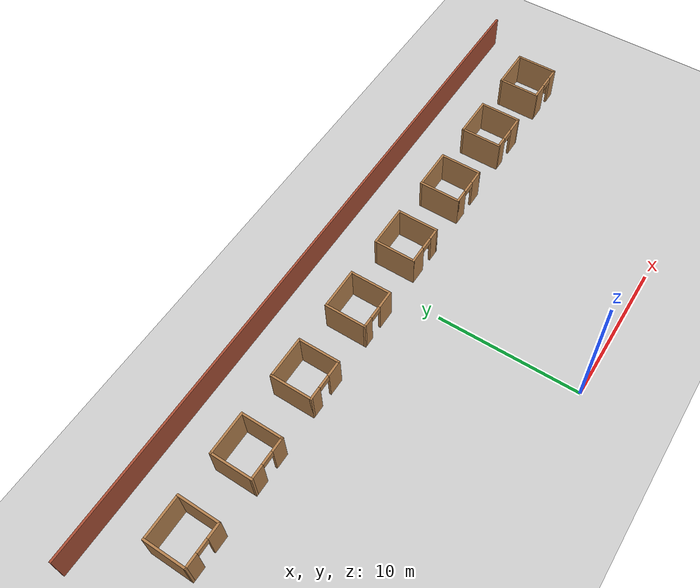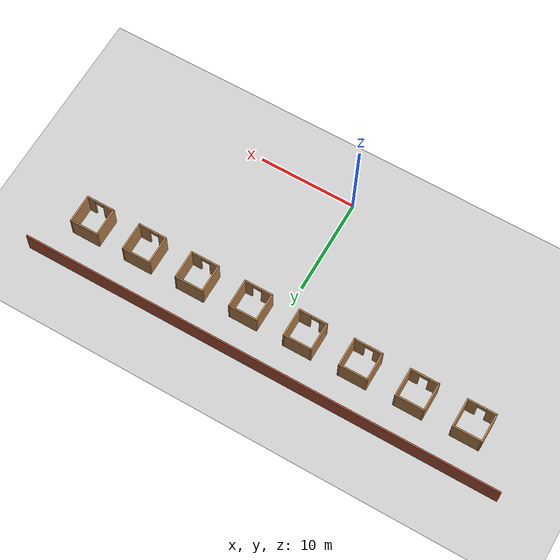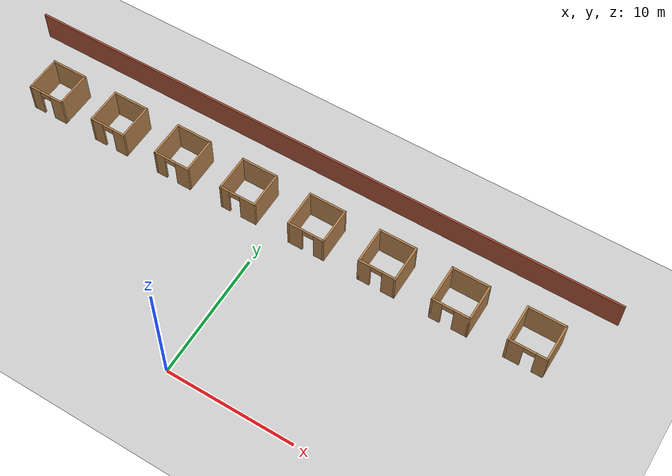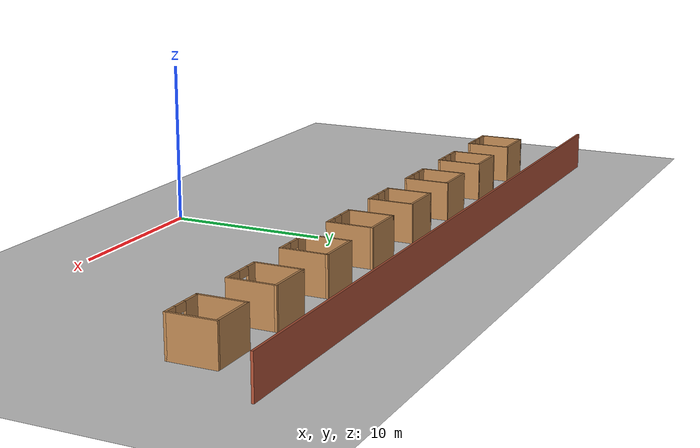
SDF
<sdf version="1.6">
 <world name="default">
  <model name="ground_plane">
   <static>1</static>
   <link name="link">
    <collision name="collision">
     <geometry><plane><normal>0 0 1</normal><size>100 100</size></plane></geometry>
     <surface>
      <contact><collide_bitmask>65535</collide_bitmask></contact>
      <friction><ode><mu>100</mu><mu2>50</mu2></ode></friction>
     </surface>
    </collision>
    <visual name="visual">
     <cast_shadows>0</cast_shadows>
     <geometry><plane><normal>0 0 1</normal><size>100 100</size></plane></geometry>
     <material>
      <script><uri>file://media/materials/scripts/gazebo.material</uri><name>Gazebo/Grey</name></script>
     </material>
    </visual>
   </link>
  </model>
  <model name="room_row_clone_clone_2">
   <pose>0.054178 14.3092 0 0 -0 3.14</pose>
   <link name="Wall_11">
    <collision name="Wall_11_Collision">
     <geometry><box><size>3 0.15 2.5</size></box></geometry>
     <pose>0 0 1.25 0 -0 0</pose>
    </collision>
    <visual name="Wall_11_Visual">
     <pose>0 0 1.25 0 -0 0</pose>
     <geometry><box><size>3 0.15 2.5</size></box></geometry>
     <material>
      <script><uri>file://media/materials/scripts/gazebo.material</uri><name>Gazebo/Wood</name></script>
      <ambient>1 1 1 1</ambient>
     </material>
     <meta><layer>0</layer></meta>
    </visual>
    <pose>1.425 0 0 0 -0 -1.5708</pose>
   </link>
   <link name="Wall_12">
    <collision name="Wall_12_Collision">
     <geometry><box><size>3 0.15 2.5</size></box></geometry>
     <pose>0 0 1.25 0 -0 0</pose>
    </collision>
    <visual name="Wall_12_Visual">
     <pose>0 0 1.25 0 -0 0</pose>
     <geometry><box><size>3 0.15 2.5</size></box></geometry>
     <material>
      <script><uri>file://media/materials/scripts/gazebo.material</uri><name>Gazebo/Wood</name></script>
      <ambient>1 1 1 1</ambient>
     </material>
     <meta><layer>0</layer></meta>
    </visual>
    <pose>2.85 -1.425 0 0 -0 0</pose>
   </link>
   <link name="Wall_13">
    <collision name="Wall_13_Collision">
     <geometry><box><size>3 0.15 2.5</size></box></geometry>
     <pose>0 0 1.25 0 -0 0</pose>
    </collision>
    <visual name="Wall_13_Visual">
     <pose>0 0 1.25 0 -0 0</pose>
     <geometry><box><size>3 0.15 2.5</size></box></geometry>
     <material>
      <script><uri>file://media/materials/scripts/gazebo.material</uri><name>Gazebo/Wood</name></script>
      <ambient>1 1 1 1</ambient>
     </material>
     <meta><layer>0</layer></meta>
    </visual>
    <pose>4.275 0 0 0 -0 1.5708</pose>
   </link>
   <link name="Wall_14">
    <pose>2.85 1.425 0 0 -0 3.14159</pose>
    <visual name="Wall_14_Visual_0">
     <pose>-1.10207 0 1.25 0 -0 0</pose>
     <geometry><box><size>0.795857 0.15 2.5</size></box></geometry>
     <material>
      <script><uri>file://media/materials/scripts/gazebo.material</uri><name>Gazebo/Wood</name></script>
      <ambient>1 1 1 1</ambient>
     </material>
     <meta><layer>0</layer></meta>
    </visual>
    <collision name="Wall_14_Collision_0">
     <geometry><box><size>0.795857 0.15 2.5</size></box></geometry>
     <pose>-1.10207 0 1.25 0 -0 0</pose>
    </collision>
    <visual name="Wall_14_Visual_1">
     <pose>0.847928 0 1.25 0 -0 0</pose>
     <geometry><box><size>1.30414 0.15 2.5</size></box></geometry>
     <material>
      <script><uri>file://media/materials/scripts/gazebo.material</uri><name>Gazebo/Wood</name></script>
      <ambient>1 1 1 1</ambient>
     </material>
     <meta><layer>0</layer></meta>
    </visual>
    <collision name="Wall_14_Collision_1">
     <geometry><box><size>1.30414 0.15 2.5</size></box></geometry>
     <pose>0.847928 0 1.25 0 -0 0</pose>
    </collision>
    <visual name="Wall_14_Visual_2">
     <pose>-0.254143 0 2.25 0 -0 0</pose>
     <geometry><box><size>0.9 0.15 0.5</size></box></geometry>
     <material>
      <script><uri>file://media/materials/scripts/gazebo.material</uri><name>Gazebo/Wood</name></script>
      <ambient>1 1 1 1</ambient>
     </material>
     <meta><layer>0</layer></meta>
    </visual>
    <collision name="Wall_14_Collision_2">
     <geometry><box><size>0.9 0.15 0.5</size></box></geometry>
     <pose>-0.254143 0 2.25 0 -0 0</pose>
    </collision>
   </link>
   <link name="Wall_17">
    <collision name="Wall_17_Collision">
     <geometry><box><size>3 0.15 2.5</size></box></geometry>
     <pose>0 0 1.25 0 -0 0</pose>
    </collision>
    <visual name="Wall_17_Visual">
     <pose>0 0 1.25 0 -0 0</pose>
     <geometry><box><size>3 0.15 2.5</size></box></geometry>
     <material>
      <script><uri>file://media/materials/scripts/gazebo.material</uri><name>Gazebo/Wood</name></script>
      <ambient>1 1 1 1</ambient>
     </material>
     <meta><layer>0</layer></meta>
    </visual>
    <pose>7.125 0 0 0 -0 -1.5708</pose>
   </link>
   <link name="Wall_18">
    <collision name="Wall_18_Collision">
     <geometry><box><size>3 0.15 2.5</size></box></geometry>
     <pose>0 0 1.25 0 -0 0</pose>
    </collision>
    <visual name="Wall_18_Visual">
     <pose>0 0 1.25 0 -0 0</pose>
     <geometry><box><size>3 0.15 2.5</size></box></geometry>
     <material>
      <script><uri>file://media/materials/scripts/gazebo.material</uri><name>Gazebo/Wood</name></script>
      <ambient>1 1 1 1</ambient>
     </material>
     <meta><layer>0</layer></meta>
    </visual>
    <pose>8.55 -1.425 0 0 -0 0</pose>
   </link>
   <link name="Wall_19">
    <collision name="Wall_19_Collision">
     <geometry><box><size>3 0.15 2.5</size></box></geometry>
     <pose>0 0 1.25 0 -0 0</pose>
    </collision>
    <visual name="Wall_19_Visual">
     <pose>0 0 1.25 0 -0 0</pose>
     <geometry><box><size>3 0.15 2.5</size></box></geometry>
     <material>
      <script><uri>file://media/materials/scripts/gazebo.material</uri><name>Gazebo/Wood</name></script>
      <ambient>1 1 1 1</ambient>
     </material>
     <meta><layer>0</layer></meta>
    </visual>
    <pose>9.975 0 0 0 -0 1.5708</pose>
   </link>
   <link name="Wall_20">
    <pose>8.55 1.425 0 0 -0 3.14159</pose>
    <visual name="Wall_20_Visual_0">
     <pose>-1.03119 0 1.25 0 -0 0</pose>
     <geometry><box><size>0.937612 0.15 2.5</size></box></geometry>
     <material>
      <script><uri>file://media/materials/scripts/gazebo.material</uri><name>Gazebo/Wood</name></script>
      <ambient>1 1 1 1</ambient>
     </material>
     <meta><layer>0</layer></meta>
    </visual>
    <collision name="Wall_20_Collision_0">
     <geometry><box><size>0.937612 0.15 2.5</size></box></geometry>
     <pose>-1.03119 0 1.25 0 -0 0</pose>
    </collision>
    <visual name="Wall_20_Visual_1">
     <pose>0.918806 0 1.25 0 -0 0</pose>
     <geometry><box><size>1.16239 0.15 2.5</size></box></geometry>
     <material>
      <script><uri>file://media/materials/scripts/gazebo.material</uri><name>Gazebo/Wood</name></script>
      <ambient>1 1 1 1</ambient>
     </material>
     <meta><layer>0</layer></meta>
    </visual>
    <collision name="Wall_20_Collision_1">
     <geometry><box><size>1.16239 0.15 2.5</size></box></geometry>
     <pose>0.918806 0 1.25 0 -0 0</pose>
    </collision>
    <visual name="Wall_20_Visual_2">
     <pose>-0.112388 0 2.25 0 -0 0</pose>
     <geometry><box><size>0.9 0.15 0.5</size></box></geometry>
     <material>
      <script><uri>file://media/materials/scripts/gazebo.material</uri><name>Gazebo/Wood</name></script>
      <ambient>1 1 1 1</ambient>
     </material>
     <meta><layer>0</layer></meta>
    </visual>
    <collision name="Wall_20_Collision_2">
     <geometry><box><size>0.9 0.15 0.5</size></box></geometry>
     <pose>-0.112388 0 2.25 0 -0 0</pose>
    </collision>
   </link>
   <link name="Wall_23">
    <collision name="Wall_23_Collision">
     <geometry><box><size>3 0.15 2.5</size></box></geometry>
     <pose>0 0 1.25 0 -0 0</pose>
    </collision>
    <visual name="Wall_23_Visual">
     <pose>0 0 1.25 0 -0 0</pose>
     <geometry><box><size>3 0.15 2.5</size></box></geometry>
     <material>
      <script><uri>file://media/materials/scripts/gazebo.material</uri><name>Gazebo/Wood</name></script>
      <ambient>1 1 1 1</ambient>
     </material>
     <meta><layer>0</layer></meta>
    </visual>
    <pose>-7.125 0 0 0 -0 -1.5708</pose>
   </link>
   <link name="Wall_24">
    <collision name="Wall_24_Collision">
     <geometry><box><size>3 0.15 2.5</size></box></geometry>
     <pose>0 0 1.25 0 -0 0</pose>
    </collision>
    <visual name="Wall_24_Visual">
     <pose>0 0 1.25 0 -0 0</pose>
     <geometry><box><size>3 0.15 2.5</size></box></geometry>
     <material>
      <script><uri>file://media/materials/scripts/gazebo.material</uri><name>Gazebo/Wood</name></script>
      <ambient>1 1 1 1</ambient>
     </material>
     <meta><layer>0</layer></meta>
    </visual>
    <pose>-8.55 -1.425 0 0 -0 3.14159</pose>
   </link>
   <link name="Wall_25">
    <collision name="Wall_25_Collision">
     <geometry><box><size>3 0.15 2.5</size></box></geometry>
     <pose>0 0 1.25 0 -0 0</pose>
    </collision>
    <visual name="Wall_25_Visual">
     <pose>0 0 1.25 0 -0 0</pose>
     <geometry><box><size>3 0.15 2.5</size></box></geometry>
     <material>
      <script><uri>file://media/materials/scripts/gazebo.material</uri><name>Gazebo/Wood</name></script>
      <ambient>1 1 1 1</ambient>
     </material>
     <meta><layer>0</layer></meta>
    </visual>
    <pose>-9.975 0 0 0 -0 1.5708</pose>
   </link>
   <link name="Wall_26">
    <pose>-8.55 1.425 0 0 -0 0</pose>
    <visual name="Wall_26_Visual_0">
     <pose>-0.952424 0 1.25 0 -0 0</pose>
     <geometry><box><size>1.09515 0.15 2.5</size></box></geometry>
     <material>
      <script><uri>file://media/materials/scripts/gazebo.material</uri><name>Gazebo/Wood</name></script>
      <ambient>1 1 1 1</ambient>
     </material>
     <meta><layer>0</layer></meta>
    </visual>
    <collision name="Wall_26_Collision_0">
     <geometry><box><size>1.09515 0.15 2.5</size></box></geometry>
     <pose>-0.952424 0 1.25 0 -0 0</pose>
    </collision>
    <visual name="Wall_26_Visual_1">
     <pose>0.997576 0 1.25 0 -0 0</pose>
     <geometry><box><size>1.00485 0.15 2.5</size></box></geometry>
     <material>
      <script><uri>file://media/materials/scripts/gazebo.material</uri><name>Gazebo/Wood</name></script>
      <ambient>1 1 1 1</ambient>
     </material>
     <meta><layer>0</layer></meta>
    </visual>
    <collision name="Wall_26_Collision_1">
     <geometry><box><size>1.00485 0.15 2.5</size></box></geometry>
     <pose>0.997576 0 1.25 0 -0 0</pose>
    </collision>
    <visual name="Wall_26_Visual_2">
     <pose>0.045152 0 2.25 0 -0 0</pose>
     <geometry><box><size>0.9 0.15 0.5</size></box></geometry>
     <material>
      <script><uri>file://media/materials/scripts/gazebo.material</uri><name>Gazebo/Wood</name></script>
      <ambient>1 1 1 1</ambient>
     </material>
     <meta><layer>0</layer></meta>
    </visual>
    <collision name="Wall_26_Collision_2">
     <geometry><box><size>0.9 0.15 0.5</size></box></geometry>
     <pose>0.045152 0 2.25 0 -0 0</pose>
    </collision>
   </link>
   <link name="Wall_29">
    <collision name="Wall_29_Collision">
     <geometry><box><size>3 0.15 2.5</size></box></geometry>
     <pose>0 0 1.25 0 -0 0</pose>
    </collision>
    <visual name="Wall_29_Visual">
     <pose>0 0 1.25 0 -0 0</pose>
     <geometry><box><size>3 0.15 2.5</size></box></geometry>
     <material>
      <script><uri>file://media/materials/scripts/gazebo.material</uri><name>Gazebo/Wood</name></script>
      <ambient>1 1 1 1</ambient>
     </material>
     <meta><layer>0</layer></meta>
    </visual>
    <pose>-12.825 0 0 0 -0 -1.5708</pose>
   </link>
   <link name="Wall_30">
    <collision name="Wall_30_Collision">
     <geometry><box><size>3 0.15 2.5</size></box></geometry>
     <pose>0 0 1.25 0 -0 0</pose>
    </collision>
    <visual name="Wall_30_Visual">
     <pose>0 0 1.25 0 -0 0</pose>
     <geometry><box><size>3 0.15 2.5</size></box></geometry>
     <material>
      <script><uri>file://media/materials/scripts/gazebo.material</uri><name>Gazebo/Wood</name></script>
      <ambient>1 1 1 1</ambient>
     </material>
     <meta><layer>0</layer></meta>
    </visual>
    <pose>-14.25 -1.425 0 0 -0 3.14159</pose>
   </link>
   <link name="Wall_31">
    <collision name="Wall_31_Collision">
     <geometry><box><size>3 0.15 2.5</size></box></geometry>
     <pose>0 0 1.25 0 -0 0</pose>
    </collision>
    <visual name="Wall_31_Visual">
     <pose>0 0 1.25 0 -0 0</pose>
     <geometry><box><size>3 0.15 2.5</size></box></geometry>
     <material>
      <script><uri>file://media/materials/scripts/gazebo.material</uri><name>Gazebo/Wood</name></script>
      <ambient>1 1 1 1</ambient>
     </material>
     <meta><layer>0</layer></meta>
    </visual>
    <pose>-15.675 0 0 0 -0 1.5708</pose>
   </link>
   <link name="Wall_32">
    <pose>-14.25 1.425 0 0 -0 0</pose>
    <visual name="Wall_32_Visual_0">
     <pose>-0.881547 0 1.25 0 -0 0</pose>
     <geometry><box><size>1.23691 0.15 2.5</size></box></geometry>
     <material>
      <script><uri>file://media/materials/scripts/gazebo.material</uri><name>Gazebo/Wood</name></script>
      <ambient>1 1 1 1</ambient>
     </material>
     <meta><layer>0</layer></meta>
    </visual>
    <collision name="Wall_32_Collision_0">
     <geometry><box><size>1.23691 0.15 2.5</size></box></geometry>
     <pose>-0.881547 0 1.25 0 -0 0</pose>
    </collision>
    <visual name="Wall_32_Visual_1">
     <pose>1.06845 0 1.25 0 -0 0</pose>
     <geometry><box><size>0.863093 0.15 2.5</size></box></geometry>
     <material>
      <script><uri>file://media/materials/scripts/gazebo.material</uri><name>Gazebo/Wood</name></script>
      <ambient>1 1 1 1</ambient>
     </material>
     <meta><layer>0</layer></meta>
    </visual>
    <collision name="Wall_32_Collision_1">
     <geometry><box><size>0.863093 0.15 2.5</size></box></geometry>
     <pose>1.06845 0 1.25 0 -0 0</pose>
    </collision>
    <visual name="Wall_32_Visual_2">
     <pose>0.186907 0 2.25 0 -0 0</pose>
     <geometry><box><size>0.9 0.15 0.5</size></box></geometry>
     <material>
      <script><uri>file://media/materials/scripts/gazebo.material</uri><name>Gazebo/Wood</name></script>
      <ambient>1 1 1 1</ambient>
     </material>
     <meta><layer>0</layer></meta>
    </visual>
    <collision name="Wall_32_Collision_2">
     <geometry><box><size>0.9 0.15 0.5</size></box></geometry>
     <pose>0.186907 0 2.25 0 -0 0</pose>
    </collision>
   </link>
   <link name="Wall_35">
    <collision name="Wall_35_Collision">
     <geometry><box><size>3 0.15 2.5</size></box></geometry>
     <pose>0 0 1.25 0 -0 0</pose>
    </collision>
    <visual name="Wall_35_Visual">
     <pose>0 0 1.25 0 -0 0</pose>
     <geometry><box><size>3 0.15 2.5</size></box></geometry>
     <material>
      <script><uri>file://media/materials/scripts/gazebo.material</uri><name>Gazebo/Wood</name></script>
      <ambient>1 1 1 1</ambient>
     </material>
     <meta><layer>0</layer></meta>
    </visual>
    <pose>12.825 0 0 0 -0 -1.5708</pose>
   </link>
   <link name="Wall_36">
    <collision name="Wall_36_Collision">
     <geometry><box><size>3 0.15 2.5</size></box></geometry>
     <pose>0 0 1.25 0 -0 0</pose>
    </collision>
    <visual name="Wall_36_Visual">
     <pose>0 0 1.25 0 -0 0</pose>
     <geometry><box><size>3 0.15 2.5</size></box></geometry>
     <material>
      <script><uri>file://media/materials/scripts/gazebo.material</uri><name>Gazebo/Wood</name></script>
      <ambient>1 1 1 1</ambient>
     </material>
     <meta><layer>0</layer></meta>
    </visual>
    <pose>14.25 -1.425 0 0 -0 0</pose>
   </link>
   <link name="Wall_37">
    <collision name="Wall_37_Collision">
     <geometry><box><size>3 0.15 2.5</size></box></geometry>
     <pose>0 0 1.25 0 -0 0</pose>
    </collision>
    <visual name="Wall_37_Visual">
     <pose>0 0 1.25 0 -0 0</pose>
     <geometry><box><size>3 0.15 2.5</size></box></geometry>
     <material>
      <script><uri>file://media/materials/scripts/gazebo.material</uri><name>Gazebo/Wood</name></script>
      <ambient>1 1 1 1</ambient>
     </material>
     <meta><layer>0</layer></meta>
    </visual>
    <pose>15.675 0 0 0 -0 1.5708</pose>
   </link>
   <link name="Wall_38">
    <pose>14.25 1.425 0 0 -0 3.14159</pose>
    <visual name="Wall_38_Visual_0">
     <pose>-0.960316 0 1.25 0 -0 0</pose>
     <geometry><box><size>1.07937 0.15 2.5</size></box></geometry>
     <material>
      <script><uri>file://media/materials/scripts/gazebo.material</uri><name>Gazebo/Wood</name></script>
      <ambient>1 1 1 1</ambient>
     </material>
     <meta><layer>0</layer></meta>
    </visual>
    <collision name="Wall_38_Collision_0">
     <geometry><box><size>1.07937 0.15 2.5</size></box></geometry>
     <pose>-0.960316 0 1.25 0 -0 0</pose>
    </collision>
    <visual name="Wall_38_Visual_1">
     <pose>0.989684 0 1.25 0 -0 0</pose>
     <geometry><box><size>1.02063 0.15 2.5</size></box></geometry>
     <material>
      <script><uri>file://media/materials/scripts/gazebo.material</uri><name>Gazebo/Wood</name></script>
      <ambient>1 1 1 1</ambient>
     </material>
     <meta><layer>0</layer></meta>
    </visual>
    <collision name="Wall_38_Collision_1">
     <geometry><box><size>1.02063 0.15 2.5</size></box></geometry>
     <pose>0.989684 0 1.25 0 -0 0</pose>
    </collision>
    <visual name="Wall_38_Visual_2">
     <pose>0.029367 0 2.25 0 -0 0</pose>
     <geometry><box><size>0.9 0.15 0.5</size></box></geometry>
     <material>
      <script><uri>file://media/materials/scripts/gazebo.material</uri><name>Gazebo/Wood</name></script>
      <ambient>1 1 1 1</ambient>
     </material>
     <meta><layer>0</layer></meta>
    </visual>
    <collision name="Wall_38_Collision_2">
     <geometry><box><size>0.9 0.15 0.5</size></box></geometry>
     <pose>0.029367 0 2.25 0 -0 0</pose>
    </collision>
   </link>
   <link name="Wall_41">
    <collision name="Wall_41_Collision">
     <geometry><box><size>3 0.15 2.5</size></box></geometry>
     <pose>0 0 1.25 0 -0 0</pose>
    </collision>
    <visual name="Wall_41_Visual">
     <pose>0 0 1.25 0 -0 0</pose>
     <geometry><box><size>3 0.15 2.5</size></box></geometry>
     <material>
      <script><uri>file://media/materials/scripts/gazebo.material</uri><name>Gazebo/Wood</name></script>
      <ambient>1 1 1 1</ambient>
     </material>
     <meta><layer>0</layer></meta>
    </visual>
    <pose>-18.525 0 0 0 -0 -1.5708</pose>
   </link>
   <link name="Wall_42">
    <collision name="Wall_42_Collision">
     <geometry><box><size>3 0.15 2.5</size></box></geometry>
     <pose>0 0 1.25 0 -0 0</pose>
    </collision>
    <visual name="Wall_42_Visual">
     <pose>0 0 1.25 0 -0 0</pose>
     <geometry><box><size>3 0.15 2.5</size></box></geometry>
     <material>
      <script><uri>file://media/materials/scripts/gazebo.material</uri><name>Gazebo/Wood</name></script>
      <ambient>1 1 1 1</ambient>
     </material>
     <meta><layer>0</layer></meta>
    </visual>
    <pose>-19.95 -1.425 0 0 -0 3.14159</pose>
   </link>
   <link name="Wall_45">
    <pose>-19.95 1.425 0 0 -0 3.14159</pose>
    <visual name="Wall_45_Visual_0">
     <pose>-0.89308 0 1.25 0 -0 0</pose>
     <geometry><box><size>1.21384 0.15 2.5</size></box></geometry>
     <material>
      <script><uri>file://media/materials/scripts/gazebo.material</uri><name>Gazebo/Wood</name></script>
      <ambient>1 1 1 1</ambient>
     </material>
     <meta><layer>0</layer></meta>
    </visual>
    <collision name="Wall_45_Collision_0">
     <geometry><box><size>1.21384 0.15 2.5</size></box></geometry>
     <pose>-0.89308 0 1.25 0 -0 0</pose>
    </collision>
    <visual name="Wall_45_Visual_1">
     <pose>1.05692 0 1.25 0 -0 0</pose>
     <geometry><box><size>0.886161 0.15 2.5</size></box></geometry>
     <material>
      <script><uri>file://media/materials/scripts/gazebo.material</uri><name>Gazebo/Wood</name></script>
      <ambient>1 1 1 1</ambient>
     </material>
     <meta><layer>0</layer></meta>
    </visual>
    <collision name="Wall_45_Collision_1">
     <geometry><box><size>0.886161 0.15 2.5</size></box></geometry>
     <pose>1.05692 0 1.25 0 -0 0</pose>
    </collision>
    <visual name="Wall_45_Visual_2">
     <pose>0.163839 0 2.25 0 -0 0</pose>
     <geometry><box><size>0.9 0.15 0.5</size></box></geometry>
     <material>
      <script><uri>file://media/materials/scripts/gazebo.material</uri><name>Gazebo/Wood</name></script>
      <ambient>1 1 1 1</ambient>
     </material>
     <meta><layer>0</layer></meta>
    </visual>
    <collision name="Wall_45_Collision_2">
     <geometry><box><size>0.9 0.15 0.5</size></box></geometry>
     <pose>0.163839 0 2.25 0 -0 0</pose>
    </collision>
   </link>
   <link name="Wall_46">
    <collision name="Wall_46_Collision">
     <geometry><box><size>3 0.15 2.5</size></box></geometry>
     <pose>0 0 1.25 0 -0 0</pose>
    </collision>
    <visual name="Wall_46_Visual">
     <pose>0 0 1.25 0 -0 0</pose>
     <geometry><box><size>3 0.15 2.5</size></box></geometry>
     <material>
      <script><uri>file://media/materials/scripts/gazebo.material</uri><name>Gazebo/Wood</name></script>
      <ambient>1 1 1 1</ambient>
     </material>
     <meta><layer>0</layer></meta>
    </visual>
    <pose>-21.375 0 0 0 -0 -1.5708</pose>
   </link>
   <link name="Wall_49">
    <collision name="Wall_49_Collision">
     <geometry><box><size>3 0.15 2.5</size></box></geometry>
     <pose>0 0 1.25 0 -0 0</pose>
    </collision>
    <visual name="Wall_49_Visual">
     <pose>0 0 1.25 0 -0 0</pose>
     <geometry><box><size>3 0.15 2.5</size></box></geometry>
     <material>
      <script><uri>file://media/materials/scripts/gazebo.material</uri><name>Gazebo/Wood</name></script>
      <ambient>1 1 1 1</ambient>
     </material>
     <meta><layer>0</layer></meta>
    </visual>
    <pose>18.525 0 0 0 -0 -1.5708</pose>
   </link>
   <link name="Wall_5">
    <pose>-2.85 1.425 0 0 -0 0</pose>
    <visual name="Wall_5_Visual_0">
     <pose>-1.05848 0 1.25 0 -0 0</pose>
     <geometry><box><size>0.883039 0.15 2.5</size></box></geometry>
     <material>
      <script><uri>file://media/materials/scripts/gazebo.material</uri><name>Gazebo/Wood</name></script>
      <ambient>1 1 1 1</ambient>
     </material>
     <meta><layer>0</layer></meta>
    </visual>
    <collision name="Wall_5_Collision_0">
     <geometry><box><size>0.883039 0.15 2.5</size></box></geometry>
     <pose>-1.05848 0 1.25 0 -0 0</pose>
    </collision>
    <visual name="Wall_5_Visual_1">
     <pose>0.891519 0 1.25 0 -0 0</pose>
     <geometry><box><size>1.21696 0.15 2.5</size></box></geometry>
     <material>
      <script><uri>file://media/materials/scripts/gazebo.material</uri><name>Gazebo/Wood</name></script>
      <ambient>1 1 1 1</ambient>
     </material>
     <meta><layer>0</layer></meta>
    </visual>
    <collision name="Wall_5_Collision_1">
     <geometry><box><size>1.21696 0.15 2.5</size></box></geometry>
     <pose>0.891519 0 1.25 0 -0 0</pose>
    </collision>
    <visual name="Wall_5_Visual_2">
     <pose>-0.166961 0 2.25 0 -0 0</pose>
     <geometry><box><size>0.9 0.15 0.5</size></box></geometry>
     <material>
      <script><uri>file://media/materials/scripts/gazebo.material</uri><name>Gazebo/Wood</name></script>
      <ambient>1 1 1 1</ambient>
     </material>
     <meta><layer>0</layer></meta>
    </visual>
    <collision name="Wall_5_Collision_2">
     <geometry><box><size>0.9 0.15 0.5</size></box></geometry>
     <pose>-0.166961 0 2.25 0 -0 0</pose>
    </collision>
   </link>
   <link name="Wall_51">
    <collision name="Wall_51_Collision">
     <geometry><box><size>3 0.15 2.5</size></box></geometry>
     <pose>0 0 1.25 0 -0 0</pose>
    </collision>
    <visual name="Wall_51_Visual">
     <pose>0 0 1.25 0 -0 0</pose>
     <geometry><box><size>3 0.15 2.5</size></box></geometry>
     <material>
      <script><uri>file://media/materials/scripts/gazebo.material</uri><name>Gazebo/Wood</name></script>
      <ambient>1 1 1 1</ambient>
     </material>
     <meta><layer>0</layer></meta>
    </visual>
    <pose>19.95 -1.425 0 0 -0 0</pose>
   </link>
   <link name="Wall_53">
    <collision name="Wall_53_Collision">
     <geometry><box><size>3 0.15 2.5</size></box></geometry>
     <pose>0 0 1.25 0 -0 0</pose>
    </collision>
    <visual name="Wall_53_Visual">
     <pose>0 0 1.25 0 -0 0</pose>
     <geometry><box><size>3 0.15 2.5</size></box></geometry>
     <material>
      <script><uri>file://media/materials/scripts/gazebo.material</uri><name>Gazebo/Wood</name></script>
      <ambient>1 1 1 1</ambient>
     </material>
     <meta><layer>0</layer></meta>
    </visual>
    <pose>21.375 0 0 0 -0 1.5708</pose>
   </link>
   <link name="Wall_54">
    <pose>19.95 1.425 0 0 -0 3.14159</pose>
    <visual name="Wall_54_Visual_0">
     <pose>-0.994975 0 1.25 0 -0 0</pose>
     <geometry><box><size>1.01005 0.15 2.5</size></box></geometry>
     <material>
      <script><uri>file://media/materials/scripts/gazebo.material</uri><name>Gazebo/Wood</name></script>
      <ambient>1 1 1 1</ambient>
     </material>
     <meta><layer>0</layer></meta>
    </visual>
    <collision name="Wall_54_Collision_0">
     <geometry><box><size>1.01005 0.15 2.5</size></box></geometry>
     <pose>-0.994975 0 1.25 0 -0 0</pose>
    </collision>
    <visual name="Wall_54_Visual_1">
     <pose>0.955025 0 1.25 0 -0 0</pose>
     <geometry><box><size>1.08995 0.15 2.5</size></box></geometry>
     <material>
      <script><uri>file://media/materials/scripts/gazebo.material</uri><name>Gazebo/Wood</name></script>
      <ambient>1 1 1 1</ambient>
     </material>
     <meta><layer>0</layer></meta>
    </visual>
    <collision name="Wall_54_Collision_1">
     <geometry><box><size>1.08995 0.15 2.5</size></box></geometry>
     <pose>0.955025 0 1.25 0 -0 0</pose>
    </collision>
    <visual name="Wall_54_Visual_2">
     <pose>-0.039949 0 2.25 0 -0 0</pose>
     <geometry><box><size>0.9 0.15 0.5</size></box></geometry>
     <material>
      <script><uri>file://media/materials/scripts/gazebo.material</uri><name>Gazebo/Wood</name></script>
      <ambient>1 1 1 1</ambient>
     </material>
     <meta><layer>0</layer></meta>
    </visual>
    <collision name="Wall_54_Collision_2">
     <geometry><box><size>0.9 0.15 0.5</size></box></geometry>
     <pose>-0.039949 0 2.25 0 -0 0</pose>
    </collision>
   </link>
   <link name="Wall_6">
    <collision name="Wall_6_Collision">
     <geometry><box><size>3 0.15 2.5</size></box></geometry>
     <pose>0 0 1.25 0 -0 0</pose>
    </collision>
    <visual name="Wall_6_Visual">
     <pose>0 0 1.25 0 -0 0</pose>
     <geometry><box><size>3 0.15 2.5</size></box></geometry>
     <material>
      <script><uri>file://media/materials/scripts/gazebo.material</uri><name>Gazebo/Wood</name></script>
      <ambient>1 1 1 1</ambient>
     </material>
     <meta><layer>0</layer></meta>
    </visual>
    <pose>-1.425 0 0 0 -0 -1.5708</pose>
   </link>
   <link name="Wall_7">
    <collision name="Wall_7_Collision">
     <geometry><box><size>3 0.15 2.5</size></box></geometry>
     <pose>0 0 1.25 0 -0 0</pose>
    </collision>
    <visual name="Wall_7_Visual">
     <pose>0 0 1.25 0 -0 0</pose>
     <geometry><box><size>3 0.15 2.5</size></box></geometry>
     <material>
      <script><uri>file://media/materials/scripts/gazebo.material</uri><name>Gazebo/Wood</name></script>
      <ambient>1 1 1 1</ambient>
     </material>
     <meta><layer>0</layer></meta>
    </visual>
    <pose>-2.85 -1.425 0 0 -0 3.14159</pose>
   </link>
   <link name="Wall_8">
    <collision name="Wall_8_Collision">
     <geometry><box><size>3 0.15 2.5</size></box></geometry>
     <pose>0 0 1.25 0 -0 0</pose>
    </collision>
    <visual name="Wall_8_Visual">
     <pose>0 0 1.25 0 -0 0</pose>
     <geometry><box><size>3 0.15 2.5</size></box></geometry>
     <material>
      <script><uri>file://media/materials/scripts/gazebo.material</uri><name>Gazebo/Wood</name></script>
      <ambient>1 1 1 1</ambient>
     </material>
     <meta><layer>0</layer></meta>
    </visual>
    <pose>-4.275 0 0 0 -0 1.5708</pose>
   </link>
   <static>1</static>
  </model>
  <model name="wall_hori">
   <link name="Wall_96">
    <inertial>
     <mass>1</mass>
     <inertia><ixx>1</ixx><ixy>0</ixy><ixz>0</ixz><iyy>1</iyy><iyz>0</iyz><izz>1</izz></inertia>
    </inertial>
    <visual name="Wall_96_Visual">
     <pose>0 0 1.25 0 -0 0</pose>
     <geometry><box><size>49 0.15 2.5</size></box></geometry>
     <material>
      <script><uri>file://media/materials/scripts/gazebo.material</uri><name>Gazebo/Bricks</name></script>
      <ambient>1 1 1 1</ambient>
      <shader type="pixel"><normal_map>__default__</normal_map></shader>
      <diffuse>0.7 0.7 0.7 1</diffuse>
      <specular>0.01 0.01 0.01 1</specular>
      <emissive>0 0 0 1</emissive>
     </material>
     <meta><layer>0</layer></meta>
    </visual>
    <collision name="Wall_96_Collision">
     <pose>0 0 1.25 0 -0 0</pose>
     <geometry><box><size>49 0.15 2.5</size></box></geometry>
     <surface>
      <friction>
       <ode><mu>1</mu><mu2>1</mu2><fdir1>0 0 0</fdir1><slip1>0</slip1><slip2>0</slip2></ode>
       <torsional>
        <coefficient>1</coefficient>
        <patch_radius>0</patch_radius>
        <surface_radius>0</surface_radius>
        <use_patch_radius>1</use_patch_radius>
        <ode><slip>0</slip></ode>
       </torsional>
      </friction>
      <bounce><restitution_coefficient>0</restitution_coefficient><threshold>1e+06</threshold></bounce>
      <contact>
       <collide_without_contact>0</collide_without_contact>
       <collide_without_contact_bitmask>1</collide_without_contact_bitmask>
       <collide_bitmask>1</collide_bitmask>
       <ode>
        <soft_cfm>0</soft_cfm>
        <soft_erp>0.2</soft_erp>
        <kp>1e+13</kp>
        <kd>1</kd>
        <max_vel>0.01</max_vel>
        <min_depth>0</min_depth>
       </ode>
       <bullet>
        <split_impulse>1</split_impulse>
        <split_impulse_penetration_threshold>-0.01</split_impulse_penetration_threshold>
        <soft_cfm>0</soft_cfm>
        <soft_erp>0.2</soft_erp>
        <kp>1e+13</kp>
        <kd>1</kd>
       </bullet>
      </contact>
     </surface>
    </collision>
   </link>
   <static>1</static>
   <pose>-0.369449 19.1025 0 0 -0 0</pose>
  </model>
 </world>
</sdf>
